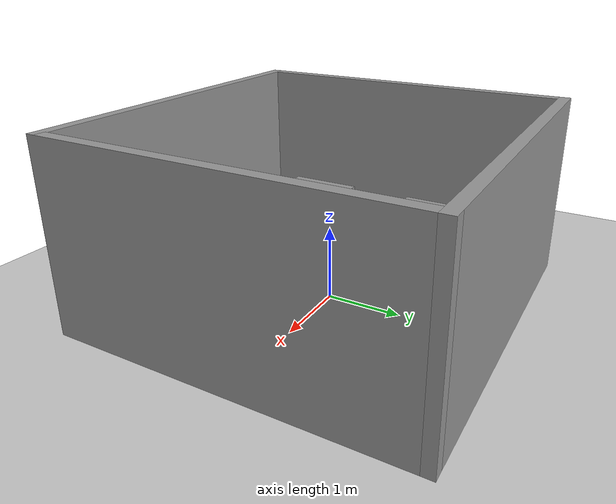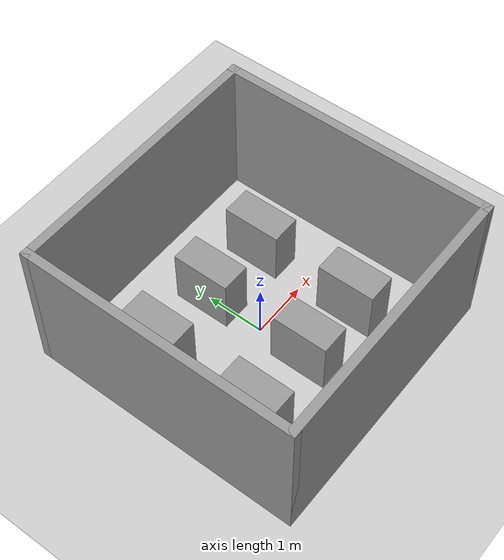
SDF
<sdf version="1.7">
 <world name="default">
  <light name="sun" type="directional">
   <pose>0 0 10 0 -0 0</pose>
   <diffuse>0.8 0.8 0.8 1</diffuse>
   <specular>0.2 0.2 0.2 1</specular>
   <attenuation>
    <range>1000</range>
    <constant>0.9</constant>
    <linear>0.01</linear>
    <quadratic>0.001</quadratic>
   </attenuation>
   <direction>-0.5 0.1 -0.9</direction>
   <spot><inner_angle>0</inner_angle><outer_angle>0</outer_angle><falloff>0</falloff></spot>
  </light>
  <model name="ground_plane">
   <static>1</static>
   <link name="link">
    <collision name="collision">
     <geometry><plane><normal>0 0 1</normal><size>100 100</size></plane></geometry>
     <surface><friction><ode><mu>100</mu><mu2>50</mu2></ode></friction></surface>
    </collision>
    <visual name="visual">
     <cast_shadows>0</cast_shadows>
     <geometry><plane><normal>0 0 1</normal><size>100 100</size></plane></geometry>
     <material>
      <script><uri>file://media/materials/scripts/gazebo.material</uri><name>Gazebo/Grey</name></script>
     </material>
    </visual>
   </link>
  </model>
  <gravity>0 0 -9.8</gravity>
  <magnetic_field>6e-06 2.3e-05 -4.2e-05</magnetic_field>
  <atmosphere type="adiabatic"/>
  <physics type="ode">
   <max_step_size>0.001</max_step_size>
   <real_time_factor>1</real_time_factor>
   <real_time_update_rate>1000</real_time_update_rate>
  </physics>
  <scene><ambient>0.4 0.4 0.4 1</ambient><background>0.7 0.7 0.7 1</background><shadows>1</shadows></scene>
  <audio><device>default</device></audio>
  <spherical_coordinates>
   <surface_model>EARTH_WGS84</surface_model>
   <latitude_deg>0</latitude_deg>
   <longitude_deg>0</longitude_deg>
   <elevation>0</elevation>
   <heading_deg>0</heading_deg>
  </spherical_coordinates>
  <model name="square">
   <link name="Wall_16">
    <collision name="Wall_16_Collision">
     <geometry><box><size>4.75 0.15 2.5</size></box></geometry>
     <pose>0 0 1.25 0 -0 0</pose>
    </collision>
    <visual name="Wall_16_Visual">
     <pose>0 0 1.25 0 -0 0</pose>
     <geometry><box><size>4.75 0.15 2.5</size></box></geometry>
     <material>
      <script><uri>file://media/materials/scripts/gazebo.material</uri><name>Gazebo/Grey</name></script>
      <ambient>1 1 1 1</ambient>
     </material>
     <meta><layer>0</layer></meta>
    </visual>
    <pose>0 -2.3 0 0 -0 0</pose>
   </link>
   <link name="Wall_19">
    <collision name="Wall_19_Collision">
     <geometry><box><size>4.75 0.15 2.5</size></box></geometry>
     <pose>0 0 1.25 0 -0 0</pose>
    </collision>
    <visual name="Wall_19_Visual">
     <pose>0 0 1.25 0 -0 0</pose>
     <geometry><box><size>4.75 0.15 2.5</size></box></geometry>
     <material>
      <script><uri>file://media/materials/scripts/gazebo.material</uri><name>Gazebo/Grey</name></script>
      <ambient>1 1 1 1</ambient>
     </material>
     <meta><layer>0</layer></meta>
    </visual>
    <pose>2.3 -0 0 0 -0 1.5708</pose>
   </link>
   <link name="Wall_20">
    <collision name="Wall_20_Collision">
     <geometry><box><size>4.75 0.15 2.5</size></box></geometry>
     <pose>0 0 1.25 0 -0 0</pose>
    </collision>
    <visual name="Wall_20_Visual">
     <pose>0 0 1.25 0 -0 0</pose>
     <geometry><box><size>4.75 0.15 2.5</size></box></geometry>
     <material>
      <script><uri>file://media/materials/scripts/gazebo.material</uri><name>Gazebo/Grey</name></script>
      <ambient>1 1 1 1</ambient>
     </material>
     <meta><layer>0</layer></meta>
    </visual>
    <pose>0 2.3 0 0 -0 3.14159</pose>
   </link>
   <link name="Wall_21">
    <collision name="Wall_21_Collision">
     <geometry><box><size>4.75 0.15 2.5</size></box></geometry>
     <pose>0 0 1.25 0 -0 0</pose>
    </collision>
    <visual name="Wall_21_Visual">
     <pose>0 0 1.25 0 -0 0</pose>
     <geometry><box><size>4.75 0.15 2.5</size></box></geometry>
     <material>
      <script><uri>file://media/materials/scripts/gazebo.material</uri><name>Gazebo/Grey</name></script>
      <ambient>1 1 1 1</ambient>
     </material>
     <meta><layer>0</layer></meta>
    </visual>
    <pose>-2.3 -0 0 0 -0 -1.5708</pose>
   </link>
   <static>1</static>
  </model>
  <model name="unit_box">
   <pose>1.20422 0.919187 0.5 0 0 -1.2e-05</pose>
   <link name="link">
    <inertial>
     <mass>1</mass>
     <inertia>
      <ixx>0.166667</ixx>
      <ixy>0</ixy>
      <ixz>0</ixz>
      <iyy>0.166667</iyy>
      <iyz>0</iyz>
      <izz>0.166667</izz>
     </inertia>
    </inertial>
    <collision name="collision"><geometry><box><size>0.513021 1 1</size></box></geometry></collision>
    <visual name="visual">
     <geometry><box><size>0.513021 1 1</size></box></geometry>
     <material>
      <script><name>Gazebo/Grey</name><uri>file://media/materials/scripts/gazebo.material</uri></script>
     </material>
    </visual>
   </link>
  </model>
  <model name="unit_box_clone">
   <pose>1.17824 -0.910351 0.5 0 0 -1.4e-05</pose>
   <link name="link">
    <inertial>
     <mass>1</mass>
     <inertia>
      <ixx>0.166667</ixx>
      <ixy>0</ixy>
      <ixz>0</ixz>
      <iyy>0.166667</iyy>
      <iyz>0</iyz>
      <izz>0.166667</izz>
     </inertia>
    </inertial>
    <collision name="collision"><geometry><box><size>0.513022 1 1</size></box></geometry></collision>
    <visual name="visual">
     <geometry><box><size>0.513022 1 1</size></box></geometry>
     <material>
      <script><name>Gazebo/Grey</name><uri>file://media/materials/scripts/gazebo.material</uri></script>
     </material>
    </visual>
   </link>
  </model>
  <model name="unit_box_clone_0">
   <pose>-0.00979 0.957472 0.5 0 0 -1.7e-05</pose>
   <link name="link">
    <inertial>
     <mass>1</mass>
     <inertia>
      <ixx>0.166667</ixx>
      <ixy>0</ixy>
      <ixz>0</ixz>
      <iyy>0.166667</iyy>
      <iyz>0</iyz>
      <izz>0.166667</izz>
     </inertia>
    </inertial>
    <collision name="collision"><geometry><box><size>0.513022 1 1</size></box></geometry></collision>
    <visual name="visual">
     <geometry><box><size>0.513022 1 1</size></box></geometry>
     <material>
      <script><name>Gazebo/Grey</name><uri>file://media/materials/scripts/gazebo.material</uri></script>
     </material>
    </visual>
   </link>
  </model>
  <model name="unit_box_clone_1">
   <pose>0.001661 -0.897612 0.5 -0 -0 -1.3e-05</pose>
   <link name="link">
    <inertial>
     <mass>1</mass>
     <inertia>
      <ixx>0.166667</ixx>
      <ixy>0</ixy>
      <ixz>0</ixz>
      <iyy>0.166667</iyy>
      <iyz>0</iyz>
      <izz>0.166667</izz>
     </inertia>
    </inertial>
    <collision name="collision"><geometry><box><size>0.513022 1 1</size></box></geometry></collision>
    <visual name="visual">
     <geometry><box><size>0.513022 1 1</size></box></geometry>
     <material>
      <script><name>Gazebo/Grey</name><uri>file://media/materials/scripts/gazebo.material</uri></script>
     </material>
    </visual>
   </link>
  </model>
  <model name="unit_box_clone_2">
   <pose>-1.30528 0.926241 0.5 0 0 -2.3e-05</pose>
   <link name="link">
    <inertial>
     <mass>1</mass>
     <inertia>
      <ixx>0.166667</ixx>
      <ixy>0</ixy>
      <ixz>0</ixz>
      <iyy>0.166667</iyy>
      <iyz>0</iyz>
      <izz>0.166667</izz>
     </inertia>
    </inertial>
    <collision name="collision"><geometry><box><size>0.513022 1 1</size></box></geometry></collision>
    <visual name="visual">
     <geometry><box><size>0.513022 1 1</size></box></geometry>
     <material>
      <script><name>Gazebo/Grey</name><uri>file://media/materials/scripts/gazebo.material</uri></script>
     </material>
    </visual>
   </link>
  </model>
  <model name="unit_box_clone_3">
   <pose>-1.33204 -0.947849 0.5 0 -0 -1.2e-05</pose>
   <link name="link">
    <inertial>
     <mass>1</mass>
     <inertia>
      <ixx>0.166667</ixx>
      <ixy>0</ixy>
      <ixz>0</ixz>
      <iyy>0.166667</iyy>
      <iyz>0</iyz>
      <izz>0.166667</izz>
     </inertia>
    </inertial>
    <collision name="collision"><geometry><box><size>0.513022 1 1</size></box></geometry></collision>
    <visual name="visual">
     <geometry><box><size>0.513022 1 1</size></box></geometry>
     <material>
      <script><name>Gazebo/Grey</name><uri>file://media/materials/scripts/gazebo.material</uri></script>
     </material>
    </visual>
   </link>
  </model>
 </world>
</sdf>
